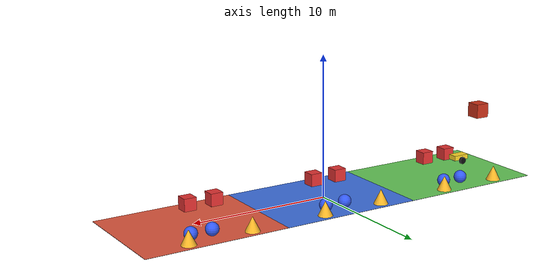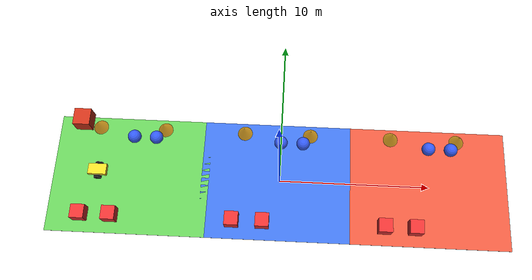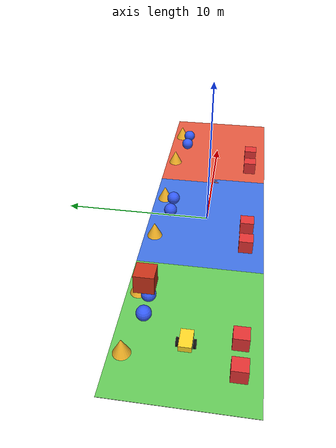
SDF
<?xml version="1.0"?>
<sdf version="1.10">
  <world name="levels_multi_items">
    <physics name="default_physics" type="ignored">
      <max_step_size>0.001</max_step_size>
      <real_time_factor>1.0</real_time_factor>
    </physics>

    <plugin filename="gz-sim-physics-system" name="gz::sim::systems::Physics"/>
    <plugin filename="gz-sim-user-commands-system" name="gz::sim::systems::UserCommands"/>
    <plugin filename="gz-sim-scene-broadcaster-system" name="gz::sim::systems::SceneBroadcaster"/>

    <light name="sun" type="directional">
      <cast_shadows>true</cast_shadows>
      <pose>0 0 10 0 0 0</pose>
      <diffuse>0.8 0.8 0.8 1</diffuse>
      <specular>0.2 0.2 0.2 1</specular>
      <direction>-0.5 0.1 -0.9</direction>
    </light>

    <include>
      <name>level_terrain_a</name>
      <uri>model://level_terrain_a</uri>
      <pose>-10 0 0 0 0 0</pose>
    </include>
    <include>
      <name>level_terrain_b</name>
      <uri>model://level_terrain_b</uri>
      <pose>0 0 0 0 0 0</pose>
    </include>
    <include>
      <name>level_terrain_c</name>
      <uri>model://level_terrain_c</uri>
      <pose>10 0 0 0 0 0</pose>
    </include>

    <include>
      <name>level_a_box_1</name>
      <uri>model://level_marker_box</uri>
      <pose>-13 -2.8 0.46 0 0 0</pose>
    </include>
    <include>
      <name>level_a_box_2</name>
      <uri>model://level_marker_box</uri>
      <pose>-11 -2.8 0.46 0 0 0</pose>
    </include>
    <include>
      <name>level_a_sphere_1</name>
      <uri>model://level_marker_sphere</uri>
      <pose>-10 2.6 0.46 0 0 0</pose>
    </include>
    <include>
      <name>level_a_sphere_2</name>
      <uri>model://level_marker_sphere</uri>
      <pose>-8.5 2.6 0.46 0 0 0</pose>
    </include>
    <include>
      <name>level_a_cone_1</name>
      <uri>model://level_marker_cone</uri>
      <pose>-12.5 3.3 0.51 0 0 0</pose>
    </include>
    <include>
      <name>level_a_cone_2</name>
      <uri>model://level_marker_cone</uri>
      <pose>-8 3.3 0.51 0 0 0</pose>
    </include>

    <include>
      <name>level_b_box_1</name>
      <uri>model://level_marker_box</uri>
      <pose>-3 -2.8 0.46 0 0 0</pose>
    </include>
    <include>
      <name>level_b_box_2</name>
      <uri>model://level_marker_box</uri>
      <pose>-1 -2.8 0.46 0 0 0</pose>
    </include>
    <include>
      <name>level_b_sphere_1</name>
      <uri>model://level_marker_sphere</uri>
      <pose>0 2.6 0.46 0 0 0</pose>
    </include>
    <include>
      <name>level_b_sphere_2</name>
      <uri>model://level_marker_sphere</uri>
      <pose>1.5 2.6 0.46 0 0 0</pose>
    </include>
    <include>
      <name>level_b_cone_1</name>
      <uri>model://level_marker_cone</uri>
      <pose>-2.5 3.3 0.51 0 0 0</pose>
    </include>
    <include>
      <name>level_b_cone_2</name>
      <uri>model://level_marker_cone</uri>
      <pose>2 3.3 0.51 0 0 0</pose>
    </include>

    <include>
      <name>level_c_box_1</name>
      <uri>model://level_marker_box</uri>
      <pose>7 -2.8 0.46 0 0 0</pose>
    </include>
    <include>
      <name>level_c_box_2</name>
      <uri>model://level_marker_box</uri>
      <pose>9 -2.8 0.46 0 0 0</pose>
    </include>
    <include>
      <name>level_c_sphere_1</name>
      <uri>model://level_marker_sphere</uri>
      <pose>10 2.6 0.46 0 0 0</pose>
    </include>
    <include>
      <name>level_c_sphere_2</name>
      <uri>model://level_marker_sphere</uri>
      <pose>11.5 2.6 0.46 0 0 0</pose>
    </include>
    <include>
      <name>level_c_cone_1</name>
      <uri>model://level_marker_cone</uri>
      <pose>7.5 3.3 0.51 0 0 0</pose>
    </include>
    <include>
      <name>level_c_cone_2</name>
      <uri>model://level_marker_cone</uri>
      <pose>12 3.3 0.51 0 0 0</pose>
    </include>

    <include>
      <name>falling_box</name>
      <uri>model://falling_box</uri>
      <pose>-12 2 5 0 0 0</pose>
    </include>

    <include>
      <name>level_vehicle</name>
      <uri>model://level_vehicle</uri>
      <pose>-12 0 0.55 0 0 0</pose>
    </include>

    <plugin name="gz::sim" filename="dummy">
      <performer name="vehicle_performer">
        <ref>level_vehicle</ref>
        <geometry>
          <box>
            <size>1.4 1.0 1.0</size>
          </box>
        </geometry>
      </performer>

      <level name="level_a">
        <pose>-10 0 3 0 0 0</pose>
        <geometry>
          <box>
            <size>10.5 8 8</size>
          </box>
        </geometry>
        <buffer>3</buffer>
        <ref>level_terrain_a</ref>
        <ref>level_a_box_1</ref>
        <ref>level_a_box_2</ref>
        <ref>level_a_sphere_1</ref>
        <ref>level_a_sphere_2</ref>
        <ref>level_a_cone_1</ref>
        <ref>level_a_cone_2</ref>
        <ref>falling_box</ref>
      </level>

      <level name="level_b">
        <pose>0 0 3 0 0 0</pose>
        <geometry>
          <box>
            <size>10.5 8 8</size>
          </box>
        </geometry>
        <buffer>3</buffer>
        <ref>level_terrain_b</ref>
        <ref>level_b_box_1</ref>
        <ref>level_b_box_2</ref>
        <ref>level_b_sphere_1</ref>
        <ref>level_b_sphere_2</ref>
        <ref>level_b_cone_1</ref>
        <ref>level_b_cone_2</ref>
      </level>

      <level name="level_c">
        <pose>10 0 3 0 0 0</pose>
        <geometry>
          <box>
            <size>10.5 8 8</size>
          </box>
        </geometry>
        <buffer>3</buffer>
        <ref>level_terrain_c</ref>
        <ref>level_c_box_1</ref>
        <ref>level_c_box_2</ref>
        <ref>level_c_sphere_1</ref>
        <ref>level_c_sphere_2</ref>
        <ref>level_c_cone_1</ref>
        <ref>level_c_cone_2</ref>
      </level>
    </plugin>
  </world>
</sdf>

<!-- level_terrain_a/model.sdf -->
<sdf version="1.10">
  <model name="level_terrain_a">
    <static>true</static>
    <link name="terrain_link">
      <visual name="terrain_visual">
        <geometry>
          <box>
            <size>10.5 8 0.02</size>
          </box>
        </geometry>
        <material>
          <diffuse>0.4 0.8 0.35 1</diffuse>
          <pbr>
            <metal>
              <albedo_map>model://level_terrain_a/materials/textures/level_a.png</albedo_map>
            </metal>
          </pbr>
        </material>
      </visual>
      <collision name="terrain_collision">
        <geometry>
          <box>
            <size>10.5 8 0.02</size>
          </box>
        </geometry>
      </collision>
    </link>
  </model>
</sdf>

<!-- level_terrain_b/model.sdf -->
<sdf version="1.10">
  <model name="level_terrain_b">
    <static>true</static>
    <link name="terrain_link">
      <visual name="terrain_visual">
        <geometry>
          <box>
            <size>10.5 8 0.02</size>
          </box>
        </geometry>
        <material>
          <diffuse>0.25 0.45 0.9 1</diffuse>
          <pbr>
            <metal>
              <albedo_map>model://level_terrain_b/materials/textures/level_b.png</albedo_map>
            </metal>
          </pbr>
        </material>
      </visual>
      <collision name="terrain_collision">
        <geometry>
          <box>
            <size>10.5 8 0.02</size>
          </box>
        </geometry>
      </collision>
    </link>
  </model>
</sdf>

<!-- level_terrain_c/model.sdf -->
<sdf version="1.10">
  <model name="level_terrain_c">
    <static>true</static>
    <link name="terrain_link">
      <visual name="terrain_visual">
        <geometry>
          <box>
            <size>10.5 8 0.02</size>
          </box>
        </geometry>
        <material>
          <diffuse>0.9 0.35 0.25 1</diffuse>
          <pbr>
            <metal>
              <albedo_map>model://level_terrain_c/materials/textures/level_c.png</albedo_map>
            </metal>
          </pbr>
        </material>
      </visual>
      <collision name="terrain_collision">
        <geometry>
          <box>
            <size>10.5 8 0.02</size>
          </box>
        </geometry>
      </collision>
    </link>
  </model>
</sdf>

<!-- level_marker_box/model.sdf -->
<sdf version="1.10">
  <model name="level_marker_box">
    <static>true</static>
    <link name="box_link">
      <visual name="box_visual">
        <geometry>
          <box>
            <size>0.9 0.9 0.9</size>
          </box>
        </geometry>
        <material>
          <ambient>0.9 0.2 0.2 1</ambient>
          <diffuse>0.9 0.2 0.2 1</diffuse>
        </material>
      </visual>
      <collision name="box_collision">
        <geometry>
          <box>
            <size>0.9 0.9 0.9</size>
          </box>
        </geometry>
      </collision>
    </link>
  </model>
</sdf>

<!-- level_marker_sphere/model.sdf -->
<sdf version="1.10">
  <model name="level_marker_sphere">
    <static>true</static>
    <link name="sphere_link">
      <visual name="sphere_visual">
        <geometry>
          <sphere>
            <radius>0.45</radius>
          </sphere>
        </geometry>
        <material>
          <ambient>0.2 0.35 0.95 1</ambient>
          <diffuse>0.2 0.35 0.95 1</diffuse>
        </material>
      </visual>
      <collision name="sphere_collision">
        <geometry>
          <sphere>
            <radius>0.45</radius>
          </sphere>
        </geometry>
      </collision>
    </link>
  </model>
</sdf>

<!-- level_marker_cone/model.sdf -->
<sdf version="1.10">
  <model name="level_marker_cone">
    <static>true</static>
    <link name="cone_link">
      <visual name="cone_visual">
        <geometry>
          <cone>
            <radius>0.5</radius>
            <length>1.0</length>
          </cone>
        </geometry>
        <material>
          <ambient>0.95 0.7 0.15 1</ambient>
          <diffuse>0.95 0.7 0.15 1</diffuse>
        </material>
      </visual>
      <collision name="cone_collision">
        <geometry>
          <cone>
            <radius>0.5</radius>
            <length>1.0</length>
          </cone>
        </geometry>
      </collision>
    </link>
  </model>
</sdf>

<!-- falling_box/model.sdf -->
<sdf version="1.10">
  <model name="falling_box">
    <static>false</static>
    <link name="box_link">
      <inertial>
        <mass>1.0</mass>
        <inertia>
          <ixx>0.1667</ixx>
          <iyy>0.1667</iyy>
          <izz>0.1667</izz>
        </inertia>
      </inertial>
      <visual name="box_visual">
        <geometry>
          <box>
            <size>1 1 1</size>
          </box>
        </geometry>
        <material>
          <diffuse>0.8 0.2 0.1 1</diffuse>
        </material>
      </visual>
      <collision name="box_collision">
        <geometry>
          <box>
            <size>1 1 1</size>
          </box>
        </geometry>
      </collision>
    </link>
  </model>
</sdf>

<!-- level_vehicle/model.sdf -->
<sdf version="1.10">
  <model name="level_vehicle">
    <pose>0 0 0 0 0 0</pose>

    <link name="chassis">
      <pose>0 0 0.45 0 0 0</pose>
      <inertial>
        <mass>2.0</mass>
        <inertia>
          <ixx>0.25</ixx>
          <iyy>0.35</iyy>
          <izz>0.45</izz>
        </inertia>
      </inertial>
      <visual name="visual">
        <geometry>
          <box>
            <size>1.2 0.7 0.35</size>
          </box>
        </geometry>
        <material>
          <ambient>1.0 0.85 0.15 1</ambient>
          <diffuse>1.0 0.85 0.15 1</diffuse>
          <specular>0.2 0.2 0.1 1</specular>
        </material>
      </visual>
      <collision name="collision">
        <geometry>
          <box>
            <size>1.2 0.7 0.35</size>
          </box>
        </geometry>
      </collision>
    </link>

    <link name="left_wheel">
      <pose>0 0.45 0.25 -1.5707 0 0</pose>
      <inertial>
        <mass>0.4</mass>
        <inertia>
          <ixx>0.01</ixx>
          <iyy>0.01</iyy>
          <izz>0.01</izz>
        </inertia>
      </inertial>
      <visual name="visual">
        <geometry>
          <cylinder>
            <radius>0.25</radius>
            <length>0.16</length>
          </cylinder>
        </geometry>
        <material>
          <ambient>0.05 0.05 0.05 1</ambient>
          <diffuse>0.05 0.05 0.05 1</diffuse>
        </material>
      </visual>
      <collision name="collision">
        <geometry>
          <cylinder>
            <radius>0.25</radius>
            <length>0.16</length>
          </cylinder>
        </geometry>
      </collision>
    </link>

    <link name="right_wheel">
      <pose>0 -0.45 0.25 -1.5707 0 0</pose>
      <inertial>
        <mass>0.4</mass>
        <inertia>
          <ixx>0.01</ixx>
          <iyy>0.01</iyy>
          <izz>0.01</izz>
        </inertia>
      </inertial>
      <visual name="visual">
        <geometry>
          <cylinder>
            <radius>0.25</radius>
            <length>0.16</length>
          </cylinder>
        </geometry>
        <material>
          <ambient>0.05 0.05 0.05 1</ambient>
          <diffuse>0.05 0.05 0.05 1</diffuse>
        </material>
      </visual>
      <collision name="collision">
        <geometry>
          <cylinder>
            <radius>0.25</radius>
            <length>0.16</length>
          </cylinder>
        </geometry>
      </collision>
    </link>

    <joint name="left_wheel_joint" type="revolute">
      <parent>chassis</parent>
      <child>left_wheel</child>
      <axis>
        <xyz>0 0 1</xyz>
      </axis>
    </joint>

    <joint name="right_wheel_joint" type="revolute">
      <parent>chassis</parent>
      <child>right_wheel</child>
      <axis>
        <xyz>0 0 1</xyz>
      </axis>
    </joint>

    <plugin filename="gz-sim-diff-drive-system" name="gz::sim::systems::DiffDrive">
      <left_joint>left_wheel_joint</left_joint>
      <right_joint>right_wheel_joint</right_joint>
      <wheel_separation>0.9</wheel_separation>
      <wheel_radius>0.25</wheel_radius>
      <topic>/model/level_vehicle/cmd_vel</topic>
    </plugin>
  </model>
</sdf>
